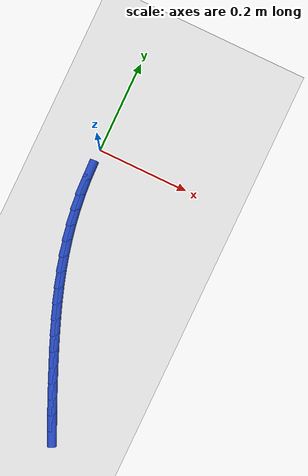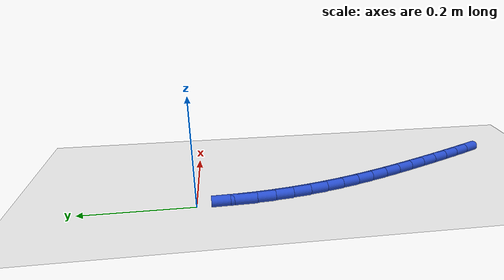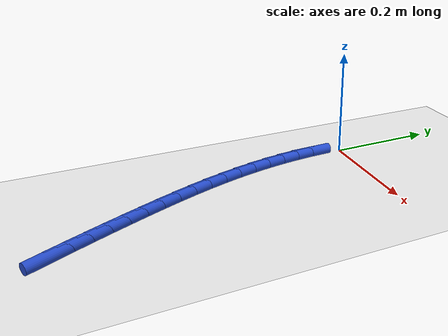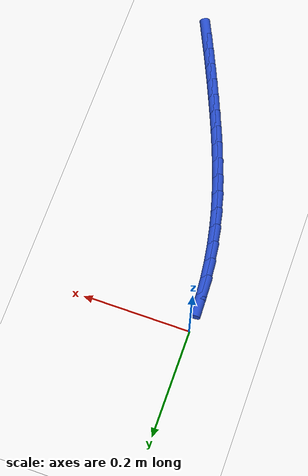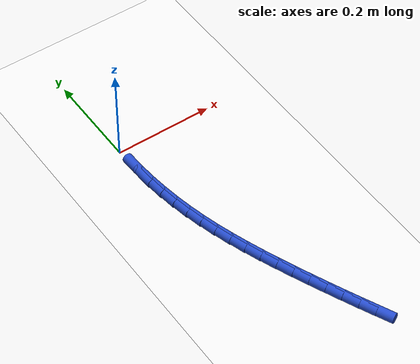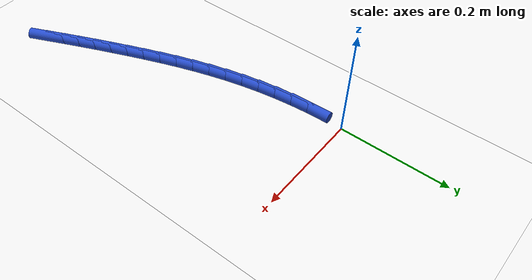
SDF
<sdf version="1.6">
 <world name="default">
  <model name="ground_plane">
   <static>1</static>
   <link name="link">
    <collision name="collision">
     <geometry><plane><normal>0 0 1</normal><size>100 100</size></plane></geometry>
     <surface><friction><ode><mu>100</mu><mu2>50</mu2></ode></friction></surface>
    </collision>
    <visual name="visual">
     <cast_shadows>0</cast_shadows>
     <geometry><plane><normal>0 0 1</normal><size>100 100</size></plane></geometry>
     <material>
      <script><uri>file://media/materials/scripts/gazebo.material</uri><name>Gazebo/WhiteGlow</name></script>
     </material>
    </visual>
   </link>
  </model>
  <model name="line">
   <link name="link_262">
    <pose>0.15731228339716963 -0.5652774472027938 0.01 0 1.57 -1.137630880448554</pose>
    <collision name="collision">
     <geometry><cylinder><radius>0.01</radius><length>0.08</length></cylinder></geometry>
    </collision>
    <visual name="visual">
     <material>
      <script><name>Gazebo/Blue</name><uri>file://media/materials/scripts/gazebo.material</uri></script>
     </material>
     <geometry><cylinder><radius>0.01</radius><length>0.08</length></cylinder></geometry>
    </visual>
   </link>
   <link name="link_263">
    <pose>0.14352344634873299 -0.5354610282382025 0.01 0 1.57 -1.1471143718547074</pose>
    <collision name="collision">
     <geometry><cylinder><radius>0.01</radius><length>0.08</length></cylinder></geometry>
    </collision>
    <visual name="visual">
     <material>
      <script><name>Gazebo/Blue</name><uri>file://media/materials/scripts/gazebo.material</uri></script>
     </material>
     <geometry><cylinder><radius>0.01</radius><length>0.08</length></cylinder></geometry>
    </visual>
   </link>
   <link name="link_264">
    <pose>0.1300154071611375 -0.5055094612382706 0.01 0 1.57 -1.1563568498447179</pose>
    <collision name="collision">
     <geometry><cylinder><radius>0.01</radius><length>0.08</length></cylinder></geometry>
    </collision>
    <visual name="visual">
     <material>
      <script><name>Gazebo/Blue</name><uri>file://media/materials/scripts/gazebo.material</uri></script>
     </material>
     <geometry><cylinder><radius>0.01</radius><length>0.08</length></cylinder></geometry>
    </visual>
   </link>
   <link name="link_265">
    <pose>0.11678038522371084 -0.4754243655888389 0.01 0 1.57 -1.1653555519056333</pose>
    <collision name="collision">
     <geometry><cylinder><radius>0.01</radius><length>0.08</length></cylinder></geometry>
    </collision>
    <visual name="visual">
     <material>
      <script><name>Gazebo/Blue</name><uri>file://media/materials/scripts/gazebo.material</uri></script>
     </material>
     <geometry><cylinder><radius>0.01</radius><length>0.08</length></cylinder></geometry>
    </visual>
   </link>
   <link name="link_266">
    <pose>0.10381059992578111 -0.44520736067575006 0.01 0 1.57 -1.1742849071989312</pose>
    <collision name="collision">
     <geometry><cylinder><radius>0.01</radius><length>0.08</length></cylinder></geometry>
    </collision>
    <visual name="visual">
     <material>
      <script><name>Gazebo/Blue</name><uri>file://media/materials/scripts/gazebo.material</uri></script>
     </material>
     <geometry><cylinder><radius>0.01</radius><length>0.08</length></cylinder></geometry>
    </visual>
   </link>
   <link name="link_267">
    <pose>0.09110399811077446 -0.41485867684104993 0.01 0 1.57 -1.1855345011991727</pose>
    <collision name="collision">
     <geometry><cylinder><radius>0.01</radius><length>0.08</length></cylinder></geometry>
    </collision>
    <visual name="visual">
     <material>
      <script><name>Gazebo/Blue</name><uri>file://media/materials/scripts/gazebo.material</uri></script>
     </material>
     <geometry><cylinder><radius>0.01</radius><length>0.08</length></cylinder></geometry>
    </visual>
   </link>
   <link name="link_268">
    <pose>0.07873587778324469 -0.38435978493109824 0.01 0 1.57 -1.2008323745618383</pose>
    <collision name="collision">
     <geometry><cylinder><radius>0.01</radius><length>0.08</length></cylinder></geometry>
    </collision>
    <visual name="visual">
     <material>
      <script><name>Gazebo/Blue</name><uri>file://media/materials/scripts/gazebo.material</uri></script>
     </material>
     <geometry><cylinder><radius>0.01</radius><length>0.08</length></cylinder></geometry>
    </visual>
   </link>
   <link name="link_269">
    <pose>0.06683708166299789 -0.35367868487816634 0.01 0 1.57 -1.2202355524677997</pose>
    <collision name="collision">
     <geometry><cylinder><radius>0.01</radius><length>0.08</length></cylinder></geometry>
    </collision>
    <visual name="visual">
     <material>
      <script><name>Gazebo/Blue</name><uri>file://media/materials/scripts/gazebo.material</uri></script>
     </material>
     <geometry><cylinder><radius>0.01</radius><length>0.08</length></cylinder></geometry>
    </visual>
   </link>
   <link name="link_270">
    <pose>0.05553966814121377 -0.3227830817853123 0.01 0 1.57 -1.2437615600723924</pose>
    <collision name="collision">
     <geometry><cylinder><radius>0.01</radius><length>0.08</length></cylinder></geometry>
    </collision>
    <visual name="visual">
     <material>
      <script><name>Gazebo/Blue</name><uri>file://media/materials/scripts/gazebo.material</uri></script>
     </material>
     <geometry><cylinder><radius>0.01</radius><length>0.08</length></cylinder></geometry>
    </visual>
   </link>
   <link name="link_271">
    <pose>0.044975695609073094 -0.29164068075559735 0.01 0 1.57 -1.2714161098744434</pose>
    <collision name="collision">
     <geometry><cylinder><radius>0.01</radius><length>0.08</length></cylinder></geometry>
    </collision>
    <visual name="visual">
     <material>
      <script><name>Gazebo/Blue</name><uri>file://media/materials/scripts/gazebo.material</uri></script>
     </material>
     <geometry><cylinder><radius>0.01</radius><length>0.08</length></cylinder></geometry>
    </visual>
   </link>
   <link name="link_272">
    <pose>0.03527722245775552 -0.26021918689207957 0.01 0 1.57 -1.3031810779018282</pose>
    <collision name="collision">
     <geometry><cylinder><radius>0.01</radius><length>0.08</length></cylinder></geometry>
    </collision>
    <visual name="visual">
     <material>
      <script><name>Gazebo/Blue</name><uri>file://media/materials/scripts/gazebo.material</uri></script>
     </material>
     <geometry><cylinder><radius>0.01</radius><length>0.08</length></cylinder></geometry>
    </visual>
   </link>
   <link name="link_273">
    <pose>0.026576307078441108 -0.2284863052978182 0.01 0 1.57 -1.3387046768967132</pose>
    <collision name="collision">
     <geometry><cylinder><radius>0.01</radius><length>0.08</length></cylinder></geometry>
    </collision>
    <visual name="visual">
     <material>
      <script><name>Gazebo/Blue</name><uri>file://media/materials/scripts/gazebo.material</uri></script>
     </material>
     <geometry><cylinder><radius>0.01</radius><length>0.08</length></cylinder></geometry>
    </visual>
   </link>
   <link name="link_274">
    <pose>0.018997026135904406 -0.196418370722438 0.01 0 1.57 -1.3758670888983942</pose>
    <collision name="collision">
     <geometry><cylinder><radius>0.01</radius><length>0.08</length></cylinder></geometry>
    </collision>
    <visual name="visual">
     <material>
      <script><name>Gazebo/Blue</name><uri>file://media/materials/scripts/gazebo.material</uri></script>
     </material>
     <geometry><cylinder><radius>0.01</radius><length>0.08</length></cylinder></geometry>
    </visual>
   </link>
   <link name="link_275">
    <pose>0.012606900804476648 -0.16405286432287952 0.01 0 1.57 -1.4138761834999198</pose>
    <collision name="collision">
     <geometry><cylinder><radius>0.01</radius><length>0.08</length></cylinder></geometry>
    </collision>
    <visual name="visual">
     <material>
      <script><name>Gazebo/Blue</name><uri>file://media/materials/scripts/gazebo.material</uri></script>
     </material>
     <geometry><cylinder><radius>0.01</radius><length>0.08</length></cylinder></geometry>
    </visual>
   </link>
   <link name="link_276">
    <pose>0.007449026148896708 -0.13145367616589165 0.01 0 1.57 -1.452860995114688</pose>
    <collision name="collision">
     <geometry><cylinder><radius>0.01</radius><length>0.08</length></cylinder></geometry>
    </collision>
    <visual name="visual">
     <material>
      <script><name>Gazebo/Blue</name><uri>file://media/materials/scripts/gazebo.material</uri></script>
     </material>
     <geometry><cylinder><radius>0.01</radius><length>0.08</length></cylinder></geometry>
    </visual>
   </link>
   <link name="link_277">
    <pose>0.003566400454911835 -0.09868480095329216 0.01 0 1.57 -1.492949032502208</pose>
    <collision name="collision">
     <geometry><cylinder><radius>0.01</radius><length>0.08</length></cylinder></geometry>
    </collision>
    <visual name="visual">
     <material>
      <script><name>Gazebo/Blue</name><uri>file://media/materials/scripts/gazebo.material</uri></script>
     </material>
     <geometry><cylinder><radius>0.01</radius><length>0.08</length></cylinder></geometry>
    </visual>
   </link>
   <link name="link_278">
    <pose>0.0010020220082692633 -0.06581023338689876 0.01 0 1.57 -1.5342612721677298</pose>
    <collision name="collision">
     <geometry><cylinder><radius>0.01</radius><length>0.08</length></cylinder></geometry>
    </collision>
    <visual name="visual">
     <material>
      <script><name>Gazebo/Blue</name><uri>file://media/materials/scripts/gazebo.material</uri></script>
     </material>
     <geometry><cylinder><radius>0.01</radius><length>0.08</length></cylinder></geometry>
    </visual>
   </link>
  </model>
 </world>
</sdf>
